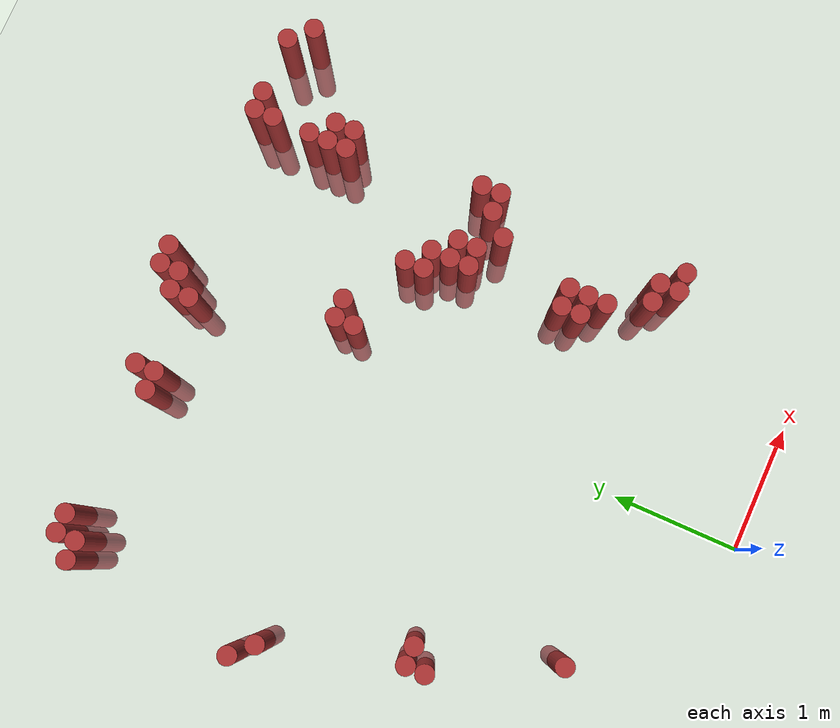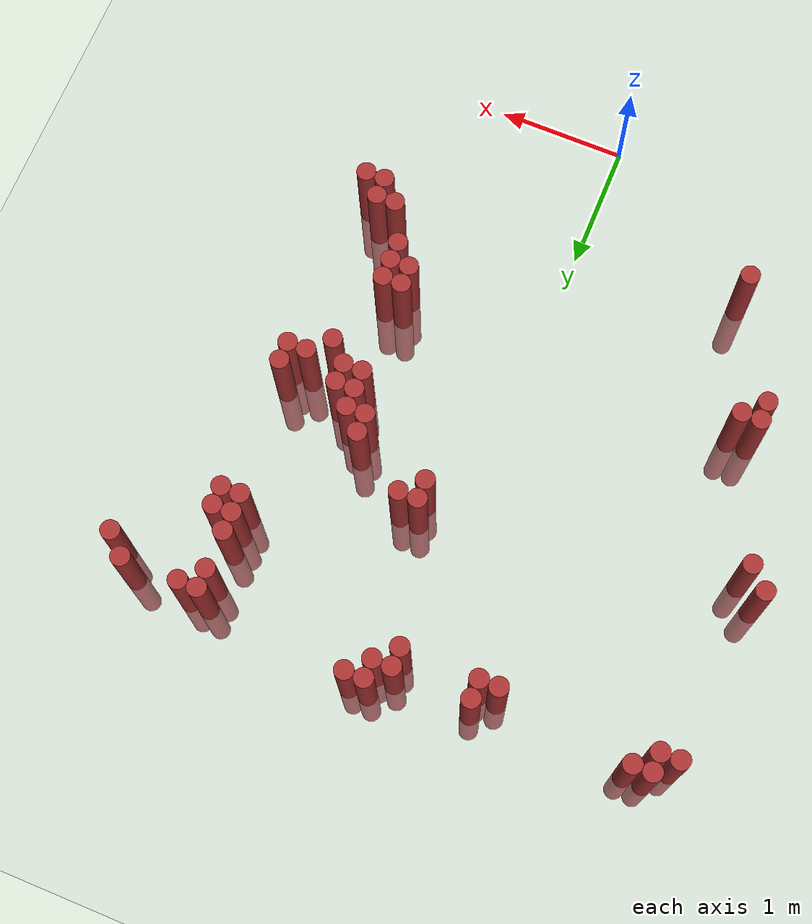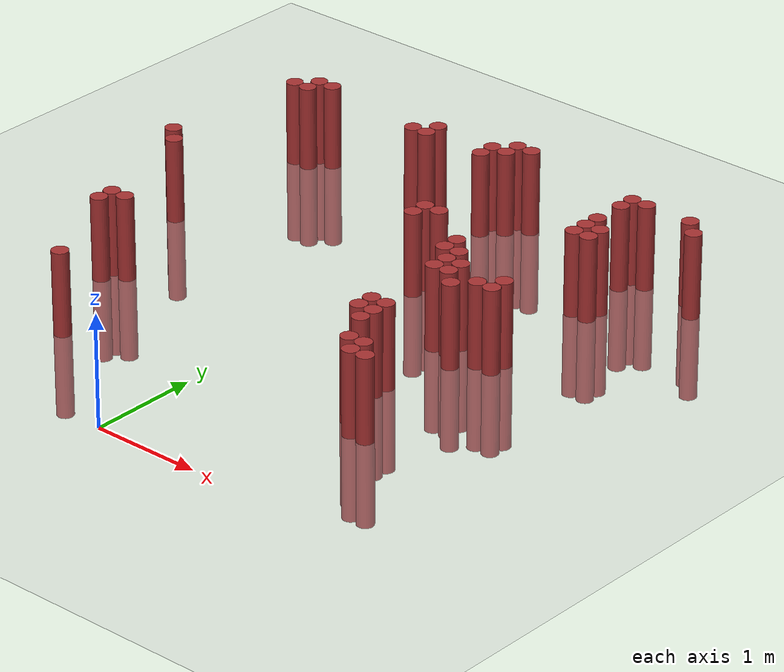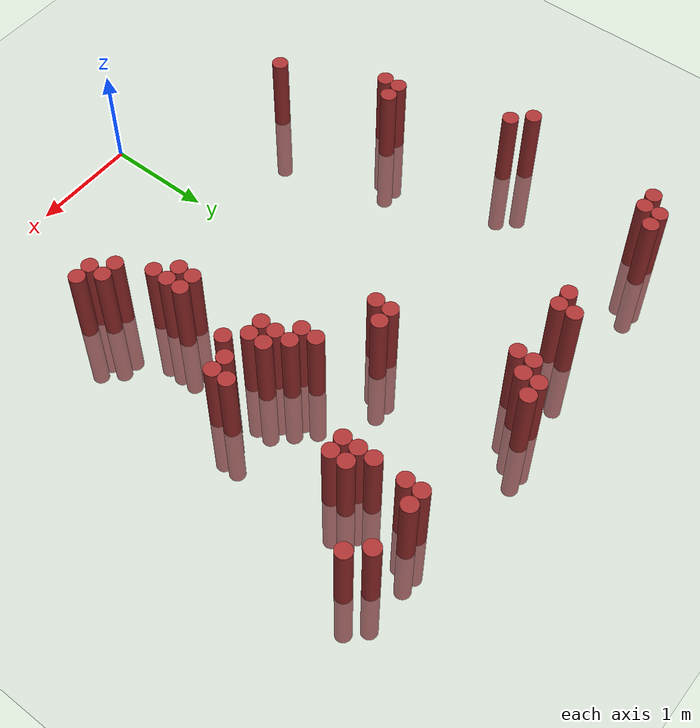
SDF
<sdf version="1.6">
 <world name="default">
  <model name="ground_plane">
   <static>1</static>
   <link name="link">
    <collision name="collision">
     <geometry><plane><normal>0 0 1</normal><size>100 100</size></plane></geometry>
     <surface><friction><ode><mu>100</mu><mu2>50</mu2></ode></friction></surface>
    </collision>
    <visual name="visual">
     <cast_shadows>0</cast_shadows>
     <geometry><plane><normal>0 0 1</normal><size>100 100</size></plane></geometry>
     <material>
      <script><uri>file://media/materials/scripts/gazebo.material</uri><name>Gazebo/Grey</name></script>
     </material>
    </visual>
   </link>
  </model>
  <model name="unit_cylinder_304">
   <static>1</static>
   <pose>-2.225000 3.175000 0.000000 0.000000 0.000000 0.000000</pose>
   <link name="link">
    <inertial>
     <mass>1</mass>
     <inertia><ixx>0.145833</ixx><ixy>0</ixy><ixz>0</ixz><iyy>0.145833</iyy><iyz>0</iyz><izz>0.125</izz></inertia>
    </inertial>
    <collision name="collision">
     <geometry><cylinder><radius>0.075000</radius><length>1.5</length></cylinder></geometry>
    </collision>
    <visual name="visual">
     <geometry><cylinder><radius>0.075000</radius><length>1.5</length></cylinder></geometry>
     <material>
      <ambient>0.648000 0.192000 0.192000 1</ambient>
      <diffuse>0.648000 0.192000 0.192000 1</diffuse>
     </material>
     <material>
      <script><name>Gazebo/Grey</name><uri>file://media/materials/scripts/gazebo.material</uri></script>
     </material>
    </visual>
   </link>
  </model>
  <model name="unit_cylinder_309">
   <static>1</static>
   <pose>-2.075000 3.025000 0.000000 0.000000 0.000000 0.000000</pose>
   <link name="link">
    <inertial>
     <mass>1</mass>
     <inertia><ixx>0.145833</ixx><ixy>0</ixy><ixz>0</ixz><iyy>0.145833</iyy><iyz>0</iyz><izz>0.125</izz></inertia>
    </inertial>
    <collision name="collision">
     <geometry><cylinder><radius>0.075000</radius><length>1.5</length></cylinder></geometry>
    </collision>
    <visual name="visual">
     <geometry><cylinder><radius>0.075000</radius><length>1.5</length></cylinder></geometry>
     <material>
      <ambient>0.648000 0.192000 0.192000 1</ambient>
      <diffuse>0.648000 0.192000 0.192000 1</diffuse>
     </material>
     <material>
      <script><name>Gazebo/Grey</name><uri>file://media/materials/scripts/gazebo.material</uri></script>
     </material>
    </visual>
   </link>
  </model>
  <model name="unit_cylinder_310">
   <static>1</static>
   <pose>-2.075000 4.525000 0.000000 0.000000 0.000000 0.000000</pose>
   <link name="link">
    <inertial>
     <mass>1</mass>
     <inertia><ixx>0.145833</ixx><ixy>0</ixy><ixz>0</ixz><iyy>0.145833</iyy><iyz>0</iyz><izz>0.125</izz></inertia>
    </inertial>
    <collision name="collision">
     <geometry><cylinder><radius>0.075000</radius><length>1.5</length></cylinder></geometry>
    </collision>
    <visual name="visual">
     <geometry><cylinder><radius>0.075000</radius><length>1.5</length></cylinder></geometry>
     <material>
      <ambient>0.648000 0.192000 0.192000 1</ambient>
      <diffuse>0.648000 0.192000 0.192000 1</diffuse>
     </material>
     <material>
      <script><name>Gazebo/Grey</name><uri>file://media/materials/scripts/gazebo.material</uri></script>
     </material>
    </visual>
   </link>
  </model>
  <model name="unit_cylinder_312">
   <static>1</static>
   <pose>-1.925000 4.525000 0.000000 0.000000 0.000000 0.000000</pose>
   <link name="link">
    <inertial>
     <mass>1</mass>
     <inertia><ixx>0.145833</ixx><ixy>0</ixy><ixz>0</ixz><iyy>0.145833</iyy><iyz>0</iyz><izz>0.125</izz></inertia>
    </inertial>
    <collision name="collision">
     <geometry><cylinder><radius>0.075000</radius><length>1.5</length></cylinder></geometry>
    </collision>
    <visual name="visual">
     <geometry><cylinder><radius>0.075000</radius><length>1.5</length></cylinder></geometry>
     <material>
      <ambient>0.648000 0.192000 0.192000 1</ambient>
      <diffuse>0.648000 0.192000 0.192000 1</diffuse>
     </material>
     <material>
      <script><name>Gazebo/Grey</name><uri>file://media/materials/scripts/gazebo.material</uri></script>
     </material>
    </visual>
   </link>
  </model>
  <model name="unit_cylinder_313">
   <static>1</static>
   <pose>-1.925000 4.675000 0.000000 0.000000 0.000000 0.000000</pose>
   <link name="link">
    <inertial>
     <mass>1</mass>
     <inertia><ixx>0.145833</ixx><ixy>0</ixy><ixz>0</ixz><iyy>0.145833</iyy><iyz>0</iyz><izz>0.125</izz></inertia>
    </inertial>
    <collision name="collision">
     <geometry><cylinder><radius>0.075000</radius><length>1.5</length></cylinder></geometry>
    </collision>
    <visual name="visual">
     <geometry><cylinder><radius>0.075000</radius><length>1.5</length></cylinder></geometry>
     <material>
      <ambient>0.648000 0.192000 0.192000 1</ambient>
      <diffuse>0.648000 0.192000 0.192000 1</diffuse>
     </material>
     <material>
      <script><name>Gazebo/Grey</name><uri>file://media/materials/scripts/gazebo.material</uri></script>
     </material>
    </visual>
   </link>
  </model>
  <model name="unit_cylinder_314">
   <static>1</static>
   <pose>-1.775000 1.825000 0.000000 0.000000 0.000000 0.000000</pose>
   <link name="link">
    <inertial>
     <mass>1</mass>
     <inertia><ixx>0.145833</ixx><ixy>0</ixy><ixz>0</ixz><iyy>0.145833</iyy><iyz>0</iyz><izz>0.125</izz></inertia>
    </inertial>
    <collision name="collision">
     <geometry><cylinder><radius>0.075000</radius><length>1.5</length></cylinder></geometry>
    </collision>
    <visual name="visual">
     <geometry><cylinder><radius>0.075000</radius><length>1.5</length></cylinder></geometry>
     <material>
      <ambient>0.648000 0.192000 0.192000 1</ambient>
      <diffuse>0.648000 0.192000 0.192000 1</diffuse>
     </material>
     <material>
      <script><name>Gazebo/Grey</name><uri>file://media/materials/scripts/gazebo.material</uri></script>
     </material>
    </visual>
   </link>
  </model>
  <model name="unit_cylinder_315">
   <static>1</static>
   <pose>-1.775000 1.975000 0.000000 0.000000 0.000000 0.000000</pose>
   <link name="link">
    <inertial>
     <mass>1</mass>
     <inertia><ixx>0.145833</ixx><ixy>0</ixy><ixz>0</ixz><iyy>0.145833</iyy><iyz>0</iyz><izz>0.125</izz></inertia>
    </inertial>
    <collision name="collision">
     <geometry><cylinder><radius>0.075000</radius><length>1.5</length></cylinder></geometry>
    </collision>
    <visual name="visual">
     <geometry><cylinder><radius>0.075000</radius><length>1.5</length></cylinder></geometry>
     <material>
      <ambient>0.648000 0.192000 0.192000 1</ambient>
      <diffuse>0.648000 0.192000 0.192000 1</diffuse>
     </material>
     <material>
      <script><name>Gazebo/Grey</name><uri>file://media/materials/scripts/gazebo.material</uri></script>
     </material>
    </visual>
   </link>
  </model>
  <model name="unit_cylinder_316">
   <static>1</static>
   <pose>-1.775000 4.675000 0.000000 0.000000 0.000000 0.000000</pose>
   <link name="link">
    <inertial>
     <mass>1</mass>
     <inertia><ixx>0.145833</ixx><ixy>0</ixy><ixz>0</ixz><iyy>0.145833</iyy><iyz>0</iyz><izz>0.125</izz></inertia>
    </inertial>
    <collision name="collision">
     <geometry><cylinder><radius>0.075000</radius><length>1.5</length></cylinder></geometry>
    </collision>
    <visual name="visual">
     <geometry><cylinder><radius>0.075000</radius><length>1.5</length></cylinder></geometry>
     <material>
      <ambient>0.648000 0.192000 0.192000 1</ambient>
      <diffuse>0.648000 0.192000 0.192000 1</diffuse>
     </material>
     <material>
      <script><name>Gazebo/Grey</name><uri>file://media/materials/scripts/gazebo.material</uri></script>
     </material>
    </visual>
   </link>
  </model>
  <model name="unit_cylinder_320">
   <static>1</static>
   <pose>-1.625000 1.975000 0.000000 0.000000 0.000000 0.000000</pose>
   <link name="link">
    <inertial>
     <mass>1</mass>
     <inertia><ixx>0.145833</ixx><ixy>0</ixy><ixz>0</ixz><iyy>0.145833</iyy><iyz>0</iyz><izz>0.125</izz></inertia>
    </inertial>
    <collision name="collision">
     <geometry><cylinder><radius>0.075000</radius><length>1.5</length></cylinder></geometry>
    </collision>
    <visual name="visual">
     <geometry><cylinder><radius>0.075000</radius><length>1.5</length></cylinder></geometry>
     <material>
      <ambient>0.648000 0.192000 0.192000 1</ambient>
      <diffuse>0.648000 0.192000 0.192000 1</diffuse>
     </material>
     <material>
      <script><name>Gazebo/Grey</name><uri>file://media/materials/scripts/gazebo.material</uri></script>
     </material>
    </visual>
   </link>
  </model>
  <model name="unit_cylinder_331">
   <static>1</static>
   <pose>-1.325000 0.925000 0.000000 0.000000 0.000000 0.000000</pose>
   <link name="link">
    <inertial>
     <mass>1</mass>
     <inertia><ixx>0.145833</ixx><ixy>0</ixy><ixz>0</ixz><iyy>0.145833</iyy><iyz>0</iyz><izz>0.125</izz></inertia>
    </inertial>
    <collision name="collision">
     <geometry><cylinder><radius>0.075000</radius><length>1.5</length></cylinder></geometry>
    </collision>
    <visual name="visual">
     <geometry><cylinder><radius>0.075000</radius><length>1.5</length></cylinder></geometry>
     <material>
      <ambient>0.648000 0.192000 0.192000 1</ambient>
      <diffuse>0.648000 0.192000 0.192000 1</diffuse>
     </material>
     <material>
      <script><name>Gazebo/Grey</name><uri>file://media/materials/scripts/gazebo.material</uri></script>
     </material>
    </visual>
   </link>
  </model>
  <model name="unit_cylinder_341">
   <static>1</static>
   <pose>-0.725000 4.525000 0.000000 0.000000 0.000000 0.000000</pose>
   <link name="link">
    <inertial>
     <mass>1</mass>
     <inertia><ixx>0.145833</ixx><ixy>0</ixy><ixz>0</ixz><iyy>0.145833</iyy><iyz>0</iyz><izz>0.125</izz></inertia>
    </inertial>
    <collision name="collision">
     <geometry><cylinder><radius>0.075000</radius><length>1.5</length></cylinder></geometry>
    </collision>
    <visual name="visual">
     <geometry><cylinder><radius>0.075000</radius><length>1.5</length></cylinder></geometry>
     <material>
      <ambient>0.648000 0.192000 0.192000 1</ambient>
      <diffuse>0.648000 0.192000 0.192000 1</diffuse>
     </material>
     <material>
      <script><name>Gazebo/Grey</name><uri>file://media/materials/scripts/gazebo.material</uri></script>
     </material>
    </visual>
   </link>
  </model>
  <model name="unit_cylinder_342">
   <static>1</static>
   <pose>-0.575000 4.525000 0.000000 0.000000 0.000000 0.000000</pose>
   <link name="link">
    <inertial>
     <mass>1</mass>
     <inertia><ixx>0.145833</ixx><ixy>0</ixy><ixz>0</ixz><iyy>0.145833</iyy><iyz>0</iyz><izz>0.125</izz></inertia>
    </inertial>
    <collision name="collision">
     <geometry><cylinder><radius>0.075000</radius><length>1.5</length></cylinder></geometry>
    </collision>
    <visual name="visual">
     <geometry><cylinder><radius>0.075000</radius><length>1.5</length></cylinder></geometry>
     <material>
      <ambient>0.648000 0.192000 0.192000 1</ambient>
      <diffuse>0.648000 0.192000 0.192000 1</diffuse>
     </material>
     <material>
      <script><name>Gazebo/Grey</name><uri>file://media/materials/scripts/gazebo.material</uri></script>
     </material>
    </visual>
   </link>
  </model>
  <model name="unit_cylinder_343">
   <static>1</static>
   <pose>-0.575000 4.675000 0.000000 0.000000 0.000000 0.000000</pose>
   <link name="link">
    <inertial>
     <mass>1</mass>
     <inertia><ixx>0.145833</ixx><ixy>0</ixy><ixz>0</ixz><iyy>0.145833</iyy><iyz>0</iyz><izz>0.125</izz></inertia>
    </inertial>
    <collision name="collision">
     <geometry><cylinder><radius>0.075000</radius><length>1.5</length></cylinder></geometry>
    </collision>
    <visual name="visual">
     <geometry><cylinder><radius>0.075000</radius><length>1.5</length></cylinder></geometry>
     <material>
      <ambient>0.648000 0.192000 0.192000 1</ambient>
      <diffuse>0.648000 0.192000 0.192000 1</diffuse>
     </material>
     <material>
      <script><name>Gazebo/Grey</name><uri>file://media/materials/scripts/gazebo.material</uri></script>
     </material>
    </visual>
   </link>
  </model>
  <model name="unit_cylinder_344">
   <static>1</static>
   <pose>0.025000 4.525000 0.000000 0.000000 0.000000 0.000000</pose>
   <link name="link">
    <inertial>
     <mass>1</mass>
     <inertia><ixx>0.145833</ixx><ixy>0</ixy><ixz>0</ixz><iyy>0.145833</iyy><iyz>0</iyz><izz>0.125</izz></inertia>
    </inertial>
    <collision name="collision">
     <geometry><cylinder><radius>0.075000</radius><length>1.5</length></cylinder></geometry>
    </collision>
    <visual name="visual">
     <geometry><cylinder><radius>0.075000</radius><length>1.5</length></cylinder></geometry>
     <material>
      <ambient>0.648000 0.192000 0.192000 1</ambient>
      <diffuse>0.648000 0.192000 0.192000 1</diffuse>
     </material>
     <material>
      <script><name>Gazebo/Grey</name><uri>file://media/materials/scripts/gazebo.material</uri></script>
     </material>
    </visual>
   </link>
  </model>
  <model name="unit_cylinder_345">
   <static>1</static>
   <pose>0.025000 4.675000 0.000000 0.000000 0.000000 0.000000</pose>
   <link name="link">
    <inertial>
     <mass>1</mass>
     <inertia><ixx>0.145833</ixx><ixy>0</ixy><ixz>0</ixz><iyy>0.145833</iyy><iyz>0</iyz><izz>0.125</izz></inertia>
    </inertial>
    <collision name="collision">
     <geometry><cylinder><radius>0.075000</radius><length>1.5</length></cylinder></geometry>
    </collision>
    <visual name="visual">
     <geometry><cylinder><radius>0.075000</radius><length>1.5</length></cylinder></geometry>
     <material>
      <ambient>0.648000 0.192000 0.192000 1</ambient>
      <diffuse>0.648000 0.192000 0.192000 1</diffuse>
     </material>
     <material>
      <script><name>Gazebo/Grey</name><uri>file://media/materials/scripts/gazebo.material</uri></script>
     </material>
    </visual>
   </link>
  </model>
  <model name="unit_cylinder_346">
   <static>1</static>
   <pose>0.175000 4.675000 0.000000 0.000000 0.000000 0.000000</pose>
   <link name="link">
    <inertial>
     <mass>1</mass>
     <inertia><ixx>0.145833</ixx><ixy>0</ixy><ixz>0</ixz><iyy>0.145833</iyy><iyz>0</iyz><izz>0.125</izz></inertia>
    </inertial>
    <collision name="collision">
     <geometry><cylinder><radius>0.075000</radius><length>1.5</length></cylinder></geometry>
    </collision>
    <visual name="visual">
     <geometry><cylinder><radius>0.075000</radius><length>1.5</length></cylinder></geometry>
     <material>
      <ambient>0.648000 0.192000 0.192000 1</ambient>
      <diffuse>0.648000 0.192000 0.192000 1</diffuse>
     </material>
     <material>
      <script><name>Gazebo/Grey</name><uri>file://media/materials/scripts/gazebo.material</uri></script>
     </material>
    </visual>
   </link>
  </model>
  <model name="unit_cylinder_347">
   <static>1</static>
   <pose>0.175000 4.825000 0.000000 0.000000 0.000000 0.000000</pose>
   <link name="link">
    <inertial>
     <mass>1</mass>
     <inertia><ixx>0.145833</ixx><ixy>0</ixy><ixz>0</ixz><iyy>0.145833</iyy><iyz>0</iyz><izz>0.125</izz></inertia>
    </inertial>
    <collision name="collision">
     <geometry><cylinder><radius>0.075000</radius><length>1.5</length></cylinder></geometry>
    </collision>
    <visual name="visual">
     <geometry><cylinder><radius>0.075000</radius><length>1.5</length></cylinder></geometry>
     <material>
      <ambient>0.648000 0.192000 0.192000 1</ambient>
      <diffuse>0.648000 0.192000 0.192000 1</diffuse>
     </material>
     <material>
      <script><name>Gazebo/Grey</name><uri>file://media/materials/scripts/gazebo.material</uri></script>
     </material>
    </visual>
   </link>
  </model>
  <model name="unit_cylinder_348">
   <static>1</static>
   <pose>0.325000 3.325000 0.000000 0.000000 0.000000 0.000000</pose>
   <link name="link">
    <inertial>
     <mass>1</mass>
     <inertia><ixx>0.145833</ixx><ixy>0</ixy><ixz>0</ixz><iyy>0.145833</iyy><iyz>0</iyz><izz>0.125</izz></inertia>
    </inertial>
    <collision name="collision">
     <geometry><cylinder><radius>0.075000</radius><length>1.5</length></cylinder></geometry>
    </collision>
    <visual name="visual">
     <geometry><cylinder><radius>0.075000</radius><length>1.5</length></cylinder></geometry>
     <material>
      <ambient>0.648000 0.192000 0.192000 1</ambient>
      <diffuse>0.648000 0.192000 0.192000 1</diffuse>
     </material>
     <material>
      <script><name>Gazebo/Grey</name><uri>file://media/materials/scripts/gazebo.material</uri></script>
     </material>
    </visual>
   </link>
  </model>
  <model name="unit_cylinder_349">
   <static>1</static>
   <pose>0.325000 3.475000 0.000000 0.000000 0.000000 0.000000</pose>
   <link name="link">
    <inertial>
     <mass>1</mass>
     <inertia><ixx>0.145833</ixx><ixy>0</ixy><ixz>0</ixz><iyy>0.145833</iyy><iyz>0</iyz><izz>0.125</izz></inertia>
    </inertial>
    <collision name="collision">
     <geometry><cylinder><radius>0.075000</radius><length>1.5</length></cylinder></geometry>
    </collision>
    <visual name="visual">
     <geometry><cylinder><radius>0.075000</radius><length>1.5</length></cylinder></geometry>
     <material>
      <ambient>0.648000 0.192000 0.192000 1</ambient>
      <diffuse>0.648000 0.192000 0.192000 1</diffuse>
     </material>
     <material>
      <script><name>Gazebo/Grey</name><uri>file://media/materials/scripts/gazebo.material</uri></script>
     </material>
    </visual>
   </link>
  </model>
  <model name="unit_cylinder_350">
   <static>1</static>
   <pose>0.325000 4.825000 0.000000 0.000000 0.000000 0.000000</pose>
   <link name="link">
    <inertial>
     <mass>1</mass>
     <inertia><ixx>0.145833</ixx><ixy>0</ixy><ixz>0</ixz><iyy>0.145833</iyy><iyz>0</iyz><izz>0.125</izz></inertia>
    </inertial>
    <collision name="collision">
     <geometry><cylinder><radius>0.075000</radius><length>1.5</length></cylinder></geometry>
    </collision>
    <visual name="visual">
     <geometry><cylinder><radius>0.075000</radius><length>1.5</length></cylinder></geometry>
     <material>
      <ambient>0.648000 0.192000 0.192000 1</ambient>
      <diffuse>0.648000 0.192000 0.192000 1</diffuse>
     </material>
     <material>
      <script><name>Gazebo/Grey</name><uri>file://media/materials/scripts/gazebo.material</uri></script>
     </material>
    </visual>
   </link>
  </model>
  <model name="unit_cylinder_351">
   <static>1</static>
   <pose>0.475000 3.475000 0.000000 0.000000 0.000000 0.000000</pose>
   <link name="link">
    <inertial>
     <mass>1</mass>
     <inertia><ixx>0.145833</ixx><ixy>0</ixy><ixz>0</ixz><iyy>0.145833</iyy><iyz>0</iyz><izz>0.125</izz></inertia>
    </inertial>
    <collision name="collision">
     <geometry><cylinder><radius>0.075000</radius><length>1.5</length></cylinder></geometry>
    </collision>
    <visual name="visual">
     <geometry><cylinder><radius>0.075000</radius><length>1.5</length></cylinder></geometry>
     <material>
      <ambient>0.648000 0.192000 0.192000 1</ambient>
      <diffuse>0.648000 0.192000 0.192000 1</diffuse>
     </material>
     <material>
      <script><name>Gazebo/Grey</name><uri>file://media/materials/scripts/gazebo.material</uri></script>
     </material>
    </visual>
   </link>
  </model>
  <model name="unit_cylinder_353">
   <static>1</static>
   <pose>0.925000 3.025000 0.000000 0.000000 0.000000 0.000000</pose>
   <link name="link">
    <inertial>
     <mass>1</mass>
     <inertia><ixx>0.145833</ixx><ixy>0</ixy><ixz>0</ixz><iyy>0.145833</iyy><iyz>0</iyz><izz>0.125</izz></inertia>
    </inertial>
    <collision name="collision">
     <geometry><cylinder><radius>0.075000</radius><length>1.5</length></cylinder></geometry>
    </collision>
    <visual name="visual">
     <geometry><cylinder><radius>0.075000</radius><length>1.5</length></cylinder></geometry>
     <material>
      <ambient>0.648000 0.192000 0.192000 1</ambient>
      <diffuse>0.648000 0.192000 0.192000 1</diffuse>
     </material>
     <material>
      <script><name>Gazebo/Grey</name><uri>file://media/materials/scripts/gazebo.material</uri></script>
     </material>
    </visual>
   </link>
  </model>
  <model name="unit_cylinder_354">
   <static>1</static>
   <pose>0.925000 3.175000 0.000000 0.000000 0.000000 0.000000</pose>
   <link name="link">
    <inertial>
     <mass>1</mass>
     <inertia><ixx>0.145833</ixx><ixy>0</ixy><ixz>0</ixz><iyy>0.145833</iyy><iyz>0</iyz><izz>0.125</izz></inertia>
    </inertial>
    <collision name="collision">
     <geometry><cylinder><radius>0.075000</radius><length>1.5</length></cylinder></geometry>
    </collision>
    <visual name="visual">
     <geometry><cylinder><radius>0.075000</radius><length>1.5</length></cylinder></geometry>
     <material>
      <ambient>0.648000 0.192000 0.192000 1</ambient>
      <diffuse>0.648000 0.192000 0.192000 1</diffuse>
     </material>
     <material>
      <script><name>Gazebo/Grey</name><uri>file://media/materials/scripts/gazebo.material</uri></script>
     </material>
    </visual>
   </link>
  </model>
  <model name="unit_cylinder_357">
   <static>1</static>
   <pose>1.075000 1.825000 0.000000 0.000000 0.000000 0.000000</pose>
   <link name="link">
    <inertial>
     <mass>1</mass>
     <inertia><ixx>0.145833</ixx><ixy>0</ixy><ixz>0</ixz><iyy>0.145833</iyy><iyz>0</iyz><izz>0.125</izz></inertia>
    </inertial>
    <collision name="collision">
     <geometry><cylinder><radius>0.075000</radius><length>1.5</length></cylinder></geometry>
    </collision>
    <visual name="visual">
     <geometry><cylinder><radius>0.075000</radius><length>1.5</length></cylinder></geometry>
     <material>
      <ambient>0.648000 0.192000 0.192000 1</ambient>
      <diffuse>0.648000 0.192000 0.192000 1</diffuse>
     </material>
     <material>
      <script><name>Gazebo/Grey</name><uri>file://media/materials/scripts/gazebo.material</uri></script>
     </material>
    </visual>
   </link>
  </model>
  <model name="unit_cylinder_358">
   <static>1</static>
   <pose>1.075000 1.975000 0.000000 0.000000 0.000000 0.000000</pose>
   <link name="link">
    <inertial>
     <mass>1</mass>
     <inertia><ixx>0.145833</ixx><ixy>0</ixy><ixz>0</ixz><iyy>0.145833</iyy><iyz>0</iyz><izz>0.125</izz></inertia>
    </inertial>
    <collision name="collision">
     <geometry><cylinder><radius>0.075000</radius><length>1.5</length></cylinder></geometry>
    </collision>
    <visual name="visual">
     <geometry><cylinder><radius>0.075000</radius><length>1.5</length></cylinder></geometry>
     <material>
      <ambient>0.648000 0.192000 0.192000 1</ambient>
      <diffuse>0.648000 0.192000 0.192000 1</diffuse>
     </material>
     <material>
      <script><name>Gazebo/Grey</name><uri>file://media/materials/scripts/gazebo.material</uri></script>
     </material>
    </visual>
   </link>
  </model>
  <model name="unit_cylinder_359">
   <static>1</static>
   <pose>1.075000 2.725000 0.000000 0.000000 0.000000 0.000000</pose>
   <link name="link">
    <inertial>
     <mass>1</mass>
     <inertia><ixx>0.145833</ixx><ixy>0</ixy><ixz>0</ixz><iyy>0.145833</iyy><iyz>0</iyz><izz>0.125</izz></inertia>
    </inertial>
    <collision name="collision">
     <geometry><cylinder><radius>0.075000</radius><length>1.5</length></cylinder></geometry>
    </collision>
    <visual name="visual">
     <geometry><cylinder><radius>0.075000</radius><length>1.5</length></cylinder></geometry>
     <material>
      <ambient>0.648000 0.192000 0.192000 1</ambient>
      <diffuse>0.648000 0.192000 0.192000 1</diffuse>
     </material>
     <material>
      <script><name>Gazebo/Grey</name><uri>file://media/materials/scripts/gazebo.material</uri></script>
     </material>
    </visual>
   </link>
  </model>
  <model name="unit_cylinder_360">
   <static>1</static>
   <pose>1.075000 2.875000 0.000000 0.000000 0.000000 0.000000</pose>
   <link name="link">
    <inertial>
     <mass>1</mass>
     <inertia><ixx>0.145833</ixx><ixy>0</ixy><ixz>0</ixz><iyy>0.145833</iyy><iyz>0</iyz><izz>0.125</izz></inertia>
    </inertial>
    <collision name="collision">
     <geometry><cylinder><radius>0.075000</radius><length>1.5</length></cylinder></geometry>
    </collision>
    <visual name="visual">
     <geometry><cylinder><radius>0.075000</radius><length>1.5</length></cylinder></geometry>
     <material>
      <ambient>0.648000 0.192000 0.192000 1</ambient>
      <diffuse>0.648000 0.192000 0.192000 1</diffuse>
     </material>
     <material>
      <script><name>Gazebo/Grey</name><uri>file://media/materials/scripts/gazebo.material</uri></script>
     </material>
    </visual>
   </link>
  </model>
  <model name="unit_cylinder_361">
   <static>1</static>
   <pose>1.075000 3.025000 0.000000 0.000000 0.000000 0.000000</pose>
   <link name="link">
    <inertial>
     <mass>1</mass>
     <inertia><ixx>0.145833</ixx><ixy>0</ixy><ixz>0</ixz><iyy>0.145833</iyy><iyz>0</iyz><izz>0.125</izz></inertia>
    </inertial>
    <collision name="collision">
     <geometry><cylinder><radius>0.075000</radius><length>1.5</length></cylinder></geometry>
    </collision>
    <visual name="visual">
     <geometry><cylinder><radius>0.075000</radius><length>1.5</length></cylinder></geometry>
     <material>
      <ambient>0.648000 0.192000 0.192000 1</ambient>
      <diffuse>0.648000 0.192000 0.192000 1</diffuse>
     </material>
     <material>
      <script><name>Gazebo/Grey</name><uri>file://media/materials/scripts/gazebo.material</uri></script>
     </material>
    </visual>
   </link>
  </model>
  <model name="unit_cylinder_364">
   <static>1</static>
   <pose>1.225000 1.675000 0.000000 0.000000 0.000000 0.000000</pose>
   <link name="link">
    <inertial>
     <mass>1</mass>
     <inertia><ixx>0.145833</ixx><ixy>0</ixy><ixz>0</ixz><iyy>0.145833</iyy><iyz>0</iyz><izz>0.125</izz></inertia>
    </inertial>
    <collision name="collision">
     <geometry><cylinder><radius>0.075000</radius><length>1.5</length></cylinder></geometry>
    </collision>
    <visual name="visual">
     <geometry><cylinder><radius>0.075000</radius><length>1.5</length></cylinder></geometry>
     <material>
      <ambient>0.648000 0.192000 0.192000 1</ambient>
      <diffuse>0.648000 0.192000 0.192000 1</diffuse>
     </material>
     <material>
      <script><name>Gazebo/Grey</name><uri>file://media/materials/scripts/gazebo.material</uri></script>
     </material>
    </visual>
   </link>
  </model>
  <model name="unit_cylinder_365">
   <static>1</static>
   <pose>1.225000 1.825000 0.000000 0.000000 0.000000 0.000000</pose>
   <link name="link">
    <inertial>
     <mass>1</mass>
     <inertia><ixx>0.145833</ixx><ixy>0</ixy><ixz>0</ixz><iyy>0.145833</iyy><iyz>0</iyz><izz>0.125</izz></inertia>
    </inertial>
    <collision name="collision">
     <geometry><cylinder><radius>0.075000</radius><length>1.5</length></cylinder></geometry>
    </collision>
    <visual name="visual">
     <geometry><cylinder><radius>0.075000</radius><length>1.5</length></cylinder></geometry>
     <material>
      <ambient>0.648000 0.192000 0.192000 1</ambient>
      <diffuse>0.648000 0.192000 0.192000 1</diffuse>
     </material>
     <material>
      <script><name>Gazebo/Grey</name><uri>file://media/materials/scripts/gazebo.material</uri></script>
     </material>
    </visual>
   </link>
  </model>
  <model name="unit_cylinder_366">
   <static>1</static>
   <pose>1.225000 1.975000 0.000000 0.000000 0.000000 0.000000</pose>
   <link name="link">
    <inertial>
     <mass>1</mass>
     <inertia><ixx>0.145833</ixx><ixy>0</ixy><ixz>0</ixz><iyy>0.145833</iyy><iyz>0</iyz><izz>0.125</izz></inertia>
    </inertial>
    <collision name="collision">
     <geometry><cylinder><radius>0.075000</radius><length>1.5</length></cylinder></geometry>
    </collision>
    <visual name="visual">
     <geometry><cylinder><radius>0.075000</radius><length>1.5</length></cylinder></geometry>
     <material>
      <ambient>0.648000 0.192000 0.192000 1</ambient>
      <diffuse>0.648000 0.192000 0.192000 1</diffuse>
     </material>
     <material>
      <script><name>Gazebo/Grey</name><uri>file://media/materials/scripts/gazebo.material</uri></script>
     </material>
    </visual>
   </link>
  </model>
  <model name="unit_cylinder_367">
   <static>1</static>
   <pose>1.225000 2.725000 0.000000 0.000000 0.000000 0.000000</pose>
   <link name="link">
    <inertial>
     <mass>1</mass>
     <inertia><ixx>0.145833</ixx><ixy>0</ixy><ixz>0</ixz><iyy>0.145833</iyy><iyz>0</iyz><izz>0.125</izz></inertia>
    </inertial>
    <collision name="collision">
     <geometry><cylinder><radius>0.075000</radius><length>1.5</length></cylinder></geometry>
    </collision>
    <visual name="visual">
     <geometry><cylinder><radius>0.075000</radius><length>1.5</length></cylinder></geometry>
     <material>
      <ambient>0.648000 0.192000 0.192000 1</ambient>
      <diffuse>0.648000 0.192000 0.192000 1</diffuse>
     </material>
     <material>
      <script><name>Gazebo/Grey</name><uri>file://media/materials/scripts/gazebo.material</uri></script>
     </material>
    </visual>
   </link>
  </model>
  <model name="unit_cylinder_368">
   <static>1</static>
   <pose>1.225000 2.875000 0.000000 0.000000 0.000000 0.000000</pose>
   <link name="link">
    <inertial>
     <mass>1</mass>
     <inertia><ixx>0.145833</ixx><ixy>0</ixy><ixz>0</ixz><iyy>0.145833</iyy><iyz>0</iyz><izz>0.125</izz></inertia>
    </inertial>
    <collision name="collision">
     <geometry><cylinder><radius>0.075000</radius><length>1.5</length></cylinder></geometry>
    </collision>
    <visual name="visual">
     <geometry><cylinder><radius>0.075000</radius><length>1.5</length></cylinder></geometry>
     <material>
      <ambient>0.648000 0.192000 0.192000 1</ambient>
      <diffuse>0.648000 0.192000 0.192000 1</diffuse>
     </material>
     <material>
      <script><name>Gazebo/Grey</name><uri>file://media/materials/scripts/gazebo.material</uri></script>
     </material>
    </visual>
   </link>
  </model>
  <model name="unit_cylinder_370">
   <static>1</static>
   <pose>1.375000 1.375000 0.000000 0.000000 0.000000 0.000000</pose>
   <link name="link">
    <inertial>
     <mass>1</mass>
     <inertia><ixx>0.145833</ixx><ixy>0</ixy><ixz>0</ixz><iyy>0.145833</iyy><iyz>0</iyz><izz>0.125</izz></inertia>
    </inertial>
    <collision name="collision">
     <geometry><cylinder><radius>0.075000</radius><length>1.5</length></cylinder></geometry>
    </collision>
    <visual name="visual">
     <geometry><cylinder><radius>0.075000</radius><length>1.5</length></cylinder></geometry>
     <material>
      <ambient>0.648000 0.192000 0.192000 1</ambient>
      <diffuse>0.648000 0.192000 0.192000 1</diffuse>
     </material>
     <material>
      <script><name>Gazebo/Grey</name><uri>file://media/materials/scripts/gazebo.material</uri></script>
     </material>
    </visual>
   </link>
  </model>
  <model name="unit_cylinder_371">
   <static>1</static>
   <pose>1.375000 2.575000 0.000000 0.000000 0.000000 0.000000</pose>
   <link name="link">
    <inertial>
     <mass>1</mass>
     <inertia><ixx>0.145833</ixx><ixy>0</ixy><ixz>0</ixz><iyy>0.145833</iyy><iyz>0</iyz><izz>0.125</izz></inertia>
    </inertial>
    <collision name="collision">
     <geometry><cylinder><radius>0.075000</radius><length>1.5</length></cylinder></geometry>
    </collision>
    <visual name="visual">
     <geometry><cylinder><radius>0.075000</radius><length>1.5</length></cylinder></geometry>
     <material>
      <ambient>0.648000 0.192000 0.192000 1</ambient>
      <diffuse>0.648000 0.192000 0.192000 1</diffuse>
     </material>
     <material>
      <script><name>Gazebo/Grey</name><uri>file://media/materials/scripts/gazebo.material</uri></script>
     </material>
    </visual>
   </link>
  </model>
  <model name="unit_cylinder_372">
   <static>1</static>
   <pose>1.525000 1.225000 0.000000 0.000000 0.000000 0.000000</pose>
   <link name="link">
    <inertial>
     <mass>1</mass>
     <inertia><ixx>0.145833</ixx><ixy>0</ixy><ixz>0</ixz><iyy>0.145833</iyy><iyz>0</iyz><izz>0.125</izz></inertia>
    </inertial>
    <collision name="collision">
     <geometry><cylinder><radius>0.075000</radius><length>1.5</length></cylinder></geometry>
    </collision>
    <visual name="visual">
     <geometry><cylinder><radius>0.075000</radius><length>1.5</length></cylinder></geometry>
     <material>
      <ambient>0.648000 0.192000 0.192000 1</ambient>
      <diffuse>0.648000 0.192000 0.192000 1</diffuse>
     </material>
     <material>
      <script><name>Gazebo/Grey</name><uri>file://media/materials/scripts/gazebo.material</uri></script>
     </material>
    </visual>
   </link>
  </model>
  <model name="unit_cylinder_373">
   <static>1</static>
   <pose>1.525000 1.375000 0.000000 0.000000 0.000000 0.000000</pose>
   <link name="link">
    <inertial>
     <mass>1</mass>
     <inertia><ixx>0.145833</ixx><ixy>0</ixy><ixz>0</ixz><iyy>0.145833</iyy><iyz>0</iyz><izz>0.125</izz></inertia>
    </inertial>
    <collision name="collision">
     <geometry><cylinder><radius>0.075000</radius><length>1.5</length></cylinder></geometry>
    </collision>
    <visual name="visual">
     <geometry><cylinder><radius>0.075000</radius><length>1.5</length></cylinder></geometry>
     <material>
      <ambient>0.648000 0.192000 0.192000 1</ambient>
      <diffuse>0.648000 0.192000 0.192000 1</diffuse>
     </material>
     <material>
      <script><name>Gazebo/Grey</name><uri>file://media/materials/scripts/gazebo.material</uri></script>
     </material>
    </visual>
   </link>
  </model>
  <model name="unit_cylinder_374">
   <static>1</static>
   <pose>1.525000 2.725000 0.000000 0.000000 0.000000 0.000000</pose>
   <link name="link">
    <inertial>
     <mass>1</mass>
     <inertia><ixx>0.145833</ixx><ixy>0</ixy><ixz>0</ixz><iyy>0.145833</iyy><iyz>0</iyz><izz>0.125</izz></inertia>
    </inertial>
    <collision name="collision">
     <geometry><cylinder><radius>0.075000</radius><length>1.5</length></cylinder></geometry>
    </collision>
    <visual name="visual">
     <geometry><cylinder><radius>0.075000</radius><length>1.5</length></cylinder></geometry>
     <material>
      <ambient>0.648000 0.192000 0.192000 1</ambient>
      <diffuse>0.648000 0.192000 0.192000 1</diffuse>
     </material>
     <material>
      <script><name>Gazebo/Grey</name><uri>file://media/materials/scripts/gazebo.material</uri></script>
     </material>
    </visual>
   </link>
  </model>
  <model name="unit_cylinder_375">
   <static>1</static>
   <pose>1.525000 3.925000 0.000000 0.000000 0.000000 0.000000</pose>
   <link name="link">
    <inertial>
     <mass>1</mass>
     <inertia><ixx>0.145833</ixx><ixy>0</ixy><ixz>0</ixz><iyy>0.145833</iyy><iyz>0</iyz><izz>0.125</izz></inertia>
    </inertial>
    <collision name="collision">
     <geometry><cylinder><radius>0.075000</radius><length>1.5</length></cylinder></geometry>
    </collision>
    <visual name="visual">
     <geometry><cylinder><radius>0.075000</radius><length>1.5</length></cylinder></geometry>
     <material>
      <ambient>0.648000 0.192000 0.192000 1</ambient>
      <diffuse>0.648000 0.192000 0.192000 1</diffuse>
     </material>
     <material>
      <script><name>Gazebo/Grey</name><uri>file://media/materials/scripts/gazebo.material</uri></script>
     </material>
    </visual>
   </link>
  </model>
  <model name="unit_cylinder_376">
   <static>1</static>
   <pose>1.525000 4.075000 0.000000 0.000000 0.000000 0.000000</pose>
   <link name="link">
    <inertial>
     <mass>1</mass>
     <inertia><ixx>0.145833</ixx><ixy>0</ixy><ixz>0</ixz><iyy>0.145833</iyy><iyz>0</iyz><izz>0.125</izz></inertia>
    </inertial>
    <collision name="collision">
     <geometry><cylinder><radius>0.075000</radius><length>1.5</length></cylinder></geometry>
    </collision>
    <visual name="visual">
     <geometry><cylinder><radius>0.075000</radius><length>1.5</length></cylinder></geometry>
     <material>
      <ambient>0.648000 0.192000 0.192000 1</ambient>
      <diffuse>0.648000 0.192000 0.192000 1</diffuse>
     </material>
     <material>
      <script><name>Gazebo/Grey</name><uri>file://media/materials/scripts/gazebo.material</uri></script>
     </material>
    </visual>
   </link>
  </model>
  <model name="unit_cylinder_377">
   <static>1</static>
   <pose>1.525000 4.225000 0.000000 0.000000 0.000000 0.000000</pose>
   <link name="link">
    <inertial>
     <mass>1</mass>
     <inertia><ixx>0.145833</ixx><ixy>0</ixy><ixz>0</ixz><iyy>0.145833</iyy><iyz>0</iyz><izz>0.125</izz></inertia>
    </inertial>
    <collision name="collision">
     <geometry><cylinder><radius>0.075000</radius><length>1.5</length></cylinder></geometry>
    </collision>
    <visual name="visual">
     <geometry><cylinder><radius>0.075000</radius><length>1.5</length></cylinder></geometry>
     <material>
      <ambient>0.648000 0.192000 0.192000 1</ambient>
      <diffuse>0.648000 0.192000 0.192000 1</diffuse>
     </material>
     <material>
      <script><name>Gazebo/Grey</name><uri>file://media/materials/scripts/gazebo.material</uri></script>
     </material>
    </visual>
   </link>
  </model>
  <model name="unit_cylinder_378">
   <static>1</static>
   <pose>1.525000 4.525000 0.000000 0.000000 0.000000 0.000000</pose>
   <link name="link">
    <inertial>
     <mass>1</mass>
     <inertia><ixx>0.145833</ixx><ixy>0</ixy><ixz>0</ixz><iyy>0.145833</iyy><iyz>0</iyz><izz>0.125</izz></inertia>
    </inertial>
    <collision name="collision">
     <geometry><cylinder><radius>0.075000</radius><length>1.5</length></cylinder></geometry>
    </collision>
    <visual name="visual">
     <geometry><cylinder><radius>0.075000</radius><length>1.5</length></cylinder></geometry>
     <material>
      <ambient>0.648000 0.192000 0.192000 1</ambient>
      <diffuse>0.648000 0.192000 0.192000 1</diffuse>
     </material>
     <material>
      <script><name>Gazebo/Grey</name><uri>file://media/materials/scripts/gazebo.material</uri></script>
     </material>
    </visual>
   </link>
  </model>
  <model name="unit_cylinder_379">
   <static>1</static>
   <pose>1.525000 4.675000 0.000000 0.000000 0.000000 0.000000</pose>
   <link name="link">
    <inertial>
     <mass>1</mass>
     <inertia><ixx>0.145833</ixx><ixy>0</ixy><ixz>0</ixz><iyy>0.145833</iyy><iyz>0</iyz><izz>0.125</izz></inertia>
    </inertial>
    <collision name="collision">
     <geometry><cylinder><radius>0.075000</radius><length>1.5</length></cylinder></geometry>
    </collision>
    <visual name="visual">
     <geometry><cylinder><radius>0.075000</radius><length>1.5</length></cylinder></geometry>
     <material>
      <ambient>0.648000 0.192000 0.192000 1</ambient>
      <diffuse>0.648000 0.192000 0.192000 1</diffuse>
     </material>
     <material>
      <script><name>Gazebo/Grey</name><uri>file://media/materials/scripts/gazebo.material</uri></script>
     </material>
    </visual>
   </link>
  </model>
  <model name="unit_cylinder_380">
   <static>1</static>
   <pose>1.675000 1.225000 0.000000 0.000000 0.000000 0.000000</pose>
   <link name="link">
    <inertial>
     <mass>1</mass>
     <inertia><ixx>0.145833</ixx><ixy>0</ixy><ixz>0</ixz><iyy>0.145833</iyy><iyz>0</iyz><izz>0.125</izz></inertia>
    </inertial>
    <collision name="collision">
     <geometry><cylinder><radius>0.075000</radius><length>1.5</length></cylinder></geometry>
    </collision>
    <visual name="visual">
     <geometry><cylinder><radius>0.075000</radius><length>1.5</length></cylinder></geometry>
     <material>
      <ambient>0.648000 0.192000 0.192000 1</ambient>
      <diffuse>0.648000 0.192000 0.192000 1</diffuse>
     </material>
     <material>
      <script><name>Gazebo/Grey</name><uri>file://media/materials/scripts/gazebo.material</uri></script>
     </material>
    </visual>
   </link>
  </model>
  <model name="unit_cylinder_381">
   <static>1</static>
   <pose>1.675000 2.725000 0.000000 0.000000 0.000000 0.000000</pose>
   <link name="link">
    <inertial>
     <mass>1</mass>
     <inertia><ixx>0.145833</ixx><ixy>0</ixy><ixz>0</ixz><iyy>0.145833</iyy><iyz>0</iyz><izz>0.125</izz></inertia>
    </inertial>
    <collision name="collision">
     <geometry><cylinder><radius>0.075000</radius><length>1.5</length></cylinder></geometry>
    </collision>
    <visual name="visual">
     <geometry><cylinder><radius>0.075000</radius><length>1.5</length></cylinder></geometry>
     <material>
      <ambient>0.648000 0.192000 0.192000 1</ambient>
      <diffuse>0.648000 0.192000 0.192000 1</diffuse>
     </material>
     <material>
      <script><name>Gazebo/Grey</name><uri>file://media/materials/scripts/gazebo.material</uri></script>
     </material>
    </visual>
   </link>
  </model>
  <model name="unit_cylinder_382">
   <static>1</static>
   <pose>1.675000 2.875000 0.000000 0.000000 0.000000 0.000000</pose>
   <link name="link">
    <inertial>
     <mass>1</mass>
     <inertia><ixx>0.145833</ixx><ixy>0</ixy><ixz>0</ixz><iyy>0.145833</iyy><iyz>0</iyz><izz>0.125</izz></inertia>
    </inertial>
    <collision name="collision">
     <geometry><cylinder><radius>0.075000</radius><length>1.5</length></cylinder></geometry>
    </collision>
    <visual name="visual">
     <geometry><cylinder><radius>0.075000</radius><length>1.5</length></cylinder></geometry>
     <material>
      <ambient>0.648000 0.192000 0.192000 1</ambient>
      <diffuse>0.648000 0.192000 0.192000 1</diffuse>
     </material>
     <material>
      <script><name>Gazebo/Grey</name><uri>file://media/materials/scripts/gazebo.material</uri></script>
     </material>
    </visual>
   </link>
  </model>
  <model name="unit_cylinder_383">
   <static>1</static>
   <pose>1.675000 3.925000 0.000000 0.000000 0.000000 0.000000</pose>
   <link name="link">
    <inertial>
     <mass>1</mass>
     <inertia><ixx>0.145833</ixx><ixy>0</ixy><ixz>0</ixz><iyy>0.145833</iyy><iyz>0</iyz><izz>0.125</izz></inertia>
    </inertial>
    <collision name="collision">
     <geometry><cylinder><radius>0.075000</radius><length>1.5</length></cylinder></geometry>
    </collision>
    <visual name="visual">
     <geometry><cylinder><radius>0.075000</radius><length>1.5</length></cylinder></geometry>
     <material>
      <ambient>0.648000 0.192000 0.192000 1</ambient>
      <diffuse>0.648000 0.192000 0.192000 1</diffuse>
     </material>
     <material>
      <script><name>Gazebo/Grey</name><uri>file://media/materials/scripts/gazebo.material</uri></script>
     </material>
    </visual>
   </link>
  </model>
  <model name="unit_cylinder_384">
   <static>1</static>
   <pose>1.675000 4.075000 0.000000 0.000000 0.000000 0.000000</pose>
   <link name="link">
    <inertial>
     <mass>1</mass>
     <inertia><ixx>0.145833</ixx><ixy>0</ixy><ixz>0</ixz><iyy>0.145833</iyy><iyz>0</iyz><izz>0.125</izz></inertia>
    </inertial>
    <collision name="collision">
     <geometry><cylinder><radius>0.075000</radius><length>1.5</length></cylinder></geometry>
    </collision>
    <visual name="visual">
     <geometry><cylinder><radius>0.075000</radius><length>1.5</length></cylinder></geometry>
     <material>
      <ambient>0.648000 0.192000 0.192000 1</ambient>
      <diffuse>0.648000 0.192000 0.192000 1</diffuse>
     </material>
     <material>
      <script><name>Gazebo/Grey</name><uri>file://media/materials/scripts/gazebo.material</uri></script>
     </material>
    </visual>
   </link>
  </model>
  <model name="unit_cylinder_385">
   <static>1</static>
   <pose>1.675000 4.675000 0.000000 0.000000 0.000000 0.000000</pose>
   <link name="link">
    <inertial>
     <mass>1</mass>
     <inertia><ixx>0.145833</ixx><ixy>0</ixy><ixz>0</ixz><iyy>0.145833</iyy><iyz>0</iyz><izz>0.125</izz></inertia>
    </inertial>
    <collision name="collision">
     <geometry><cylinder><radius>0.075000</radius><length>1.5</length></cylinder></geometry>
    </collision>
    <visual name="visual">
     <geometry><cylinder><radius>0.075000</radius><length>1.5</length></cylinder></geometry>
     <material>
      <ambient>0.648000 0.192000 0.192000 1</ambient>
      <diffuse>0.648000 0.192000 0.192000 1</diffuse>
     </material>
     <material>
      <script><name>Gazebo/Grey</name><uri>file://media/materials/scripts/gazebo.material</uri></script>
     </material>
    </visual>
   </link>
  </model>
  <model name="unit_cylinder_390">
   <static>1</static>
   <pose>2.125000 4.675000 0.000000 0.000000 0.000000 0.000000</pose>
   <link name="link">
    <inertial>
     <mass>1</mass>
     <inertia><ixx>0.145833</ixx><ixy>0</ixy><ixz>0</ixz><iyy>0.145833</iyy><iyz>0</iyz><izz>0.125</izz></inertia>
    </inertial>
    <collision name="collision">
     <geometry><cylinder><radius>0.075000</radius><length>1.5</length></cylinder></geometry>
    </collision>
    <visual name="visual">
     <geometry><cylinder><radius>0.075000</radius><length>1.5</length></cylinder></geometry>
     <material>
      <ambient>0.648000 0.192000 0.192000 1</ambient>
      <diffuse>0.648000 0.192000 0.192000 1</diffuse>
     </material>
     <material>
      <script><name>Gazebo/Grey</name><uri>file://media/materials/scripts/gazebo.material</uri></script>
     </material>
    </visual>
   </link>
  </model>
  <model name="unit_cylinder_391">
   <static>1</static>
   <pose>2.275000 4.525000 0.000000 0.000000 0.000000 0.000000</pose>
   <link name="link">
    <inertial>
     <mass>1</mass>
     <inertia><ixx>0.145833</ixx><ixy>0</ixy><ixz>0</ixz><iyy>0.145833</iyy><iyz>0</iyz><izz>0.125</izz></inertia>
    </inertial>
    <collision name="collision">
     <geometry><cylinder><radius>0.075000</radius><length>1.5</length></cylinder></geometry>
    </collision>
    <visual name="visual">
     <geometry><cylinder><radius>0.075000</radius><length>1.5</length></cylinder></geometry>
     <material>
      <ambient>0.648000 0.192000 0.192000 1</ambient>
      <diffuse>0.648000 0.192000 0.192000 1</diffuse>
     </material>
     <material>
      <script><name>Gazebo/Grey</name><uri>file://media/materials/scripts/gazebo.material</uri></script>
     </material>
    </visual>
   </link>
  </model>
 </world>
</sdf>
